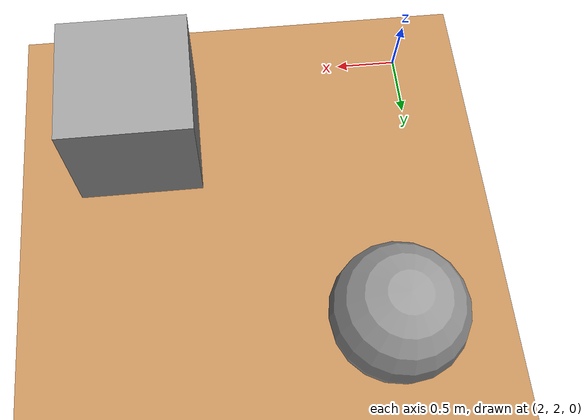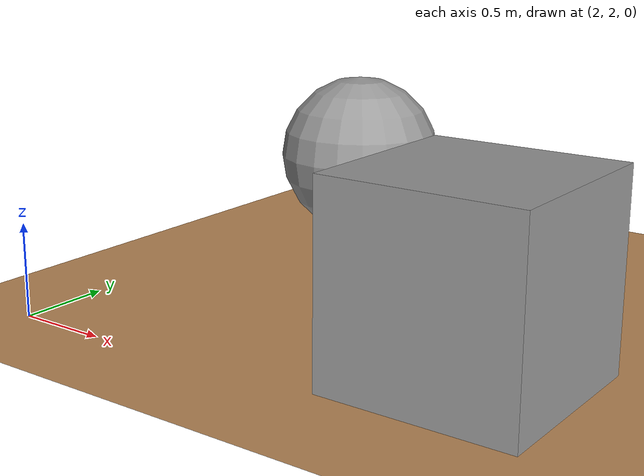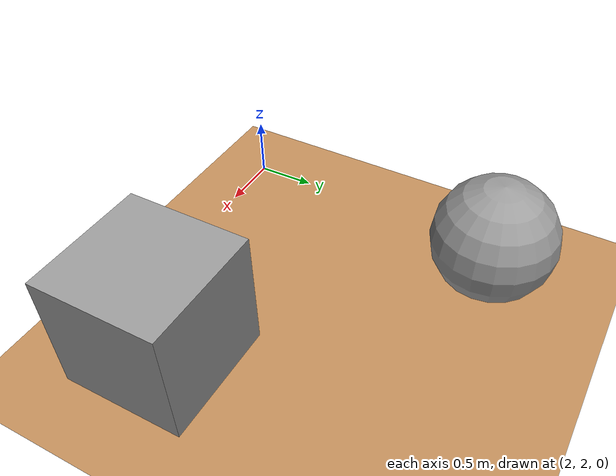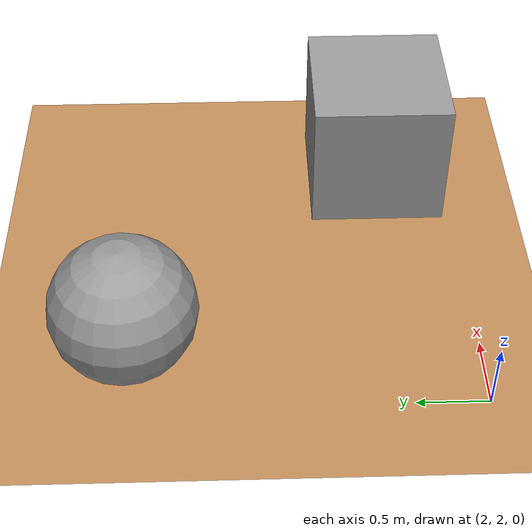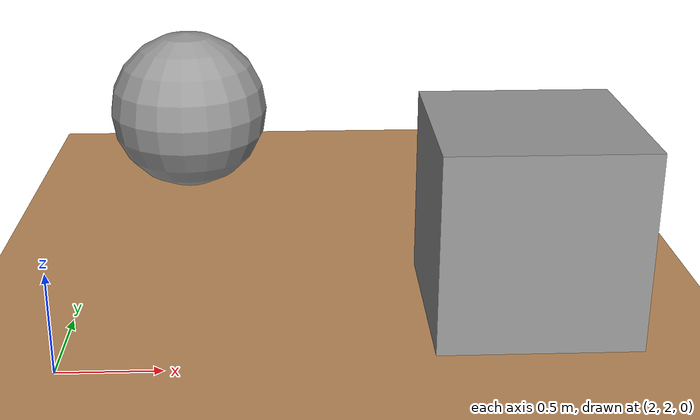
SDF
<sdf version="1.7">
 <world name="default">
  <light name="sun" type="directional">
   <pose>0 0 10 0 -0 0</pose>
   <diffuse>0.8 0.8 0.8 1</diffuse>
   <specular>0.2 0.2 0.2 1</specular>
   <attenuation>
    <range>1000</range>
    <constant>0.9</constant>
    <linear>0.01</linear>
    <quadratic>0.001</quadratic>
   </attenuation>
   <direction>-0.5 0.1 -0.9</direction>
   <spot><inner_angle>0</inner_angle><outer_angle>0</outer_angle><falloff>0</falloff></spot>
  </light>
  <model name="ground_plane">
   <static>1</static>
   <link name="link">
    <collision name="collision">
     <geometry><plane><normal>0 0 1</normal><size>100 100</size></plane></geometry>
     <surface><friction><ode><mu>0.8</mu><mu2>0.8</mu2></ode></friction></surface>
    </collision>
    <visual name="visual">
     <geometry><plane><normal>0 0 1</normal><size>100 100</size></plane></geometry>
     <material>
      <ambient>0.75 0.55 0.35 1</ambient>
      <diffuse>0.75 0.55 0.35 1</diffuse>
      <specular>0.05 0.05 0.05 1</specular>
      <emissive>0 0 0 1</emissive>
     </material>
    </visual>
   </link>
  </model>
  <physics name="default_physics" default="1" type="ode">
   <max_step_size>0.001</max_step_size>
   <real_time_factor>1</real_time_factor>
   <real_time_update_rate>1000</real_time_update_rate>
  </physics>
  <gravity>0 0 -9.8</gravity>
  <spherical_coordinates>
   <surface_model>EARTH_WGS84</surface_model>
   <latitude_deg>37.41203</latitude_deg>
   <longitude_deg>-122.06382</longitude_deg>
   <elevation>0.0</elevation>
   <heading_deg>0</heading_deg>
  </spherical_coordinates>
  <scene><ambient>0.4 0.4 0.4 1</ambient><background>0.7 0.7 0.9 1</background><shadows>1</shadows></scene>
  <audio><device>default</device></audio>
  <magnetic_field>6e-06 2.3e-05 -4.2e-05</magnetic_field>
  <atmosphere type="adiabatic"/>
  <model name="unit_sphere">
   <pose>2.43748 4.40795 0.5 0 -0 0</pose>
   <link name="link">
    <inertial>
     <mass>1</mass>
     <inertia><ixx>0.1</ixx><ixy>0</ixy><ixz>0</ixz><iyy>0.1</iyy><iyz>0</iyz><izz>0.1</izz></inertia>
    </inertial>
    <collision name="collision"><geometry><sphere><radius>0.5</radius></sphere></geometry></collision>
    <visual name="visual">
     <geometry><sphere><radius>0.5</radius></sphere></geometry>
     <material>
      <script><name>Gazebo/Grey</name><uri>file://media/materials/scripts/gazebo.material</uri></script>
     </material>
    </visual>
   </link>
  </model>
  <model name="unit_box">
   <pose>4.27093 2.58524 0.499995 1e-05 -0 0</pose>
   <link name="link">
    <inertial>
     <mass>1</mass>
     <inertia>
      <ixx>0.166667</ixx>
      <ixy>0</ixy>
      <ixz>0</ixz>
      <iyy>0.166667</iyy>
      <iyz>0</iyz>
      <izz>0.166667</izz>
     </inertia>
    </inertial>
    <collision name="collision"><geometry><box><size>1 1 1</size></box></geometry></collision>
    <visual name="visual">
     <geometry><box><size>1 1 1</size></box></geometry>
     <material>
      <script><name>Gazebo/Grey</name><uri>file://media/materials/scripts/gazebo.material</uri></script>
     </material>
    </visual>
   </link>
  </model>
 </world>
</sdf>
